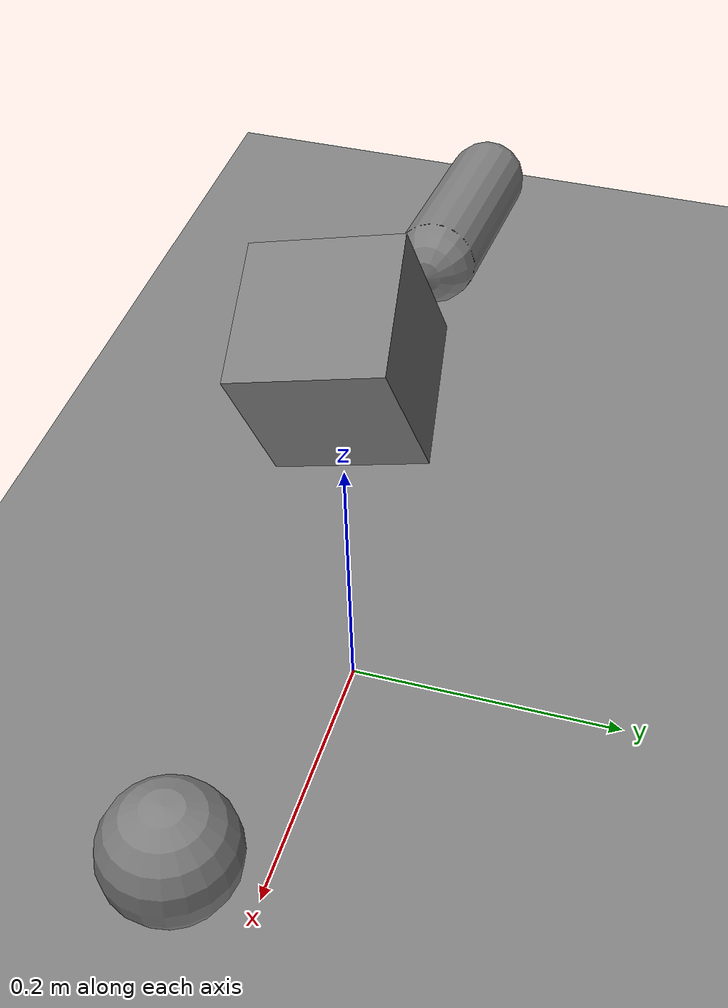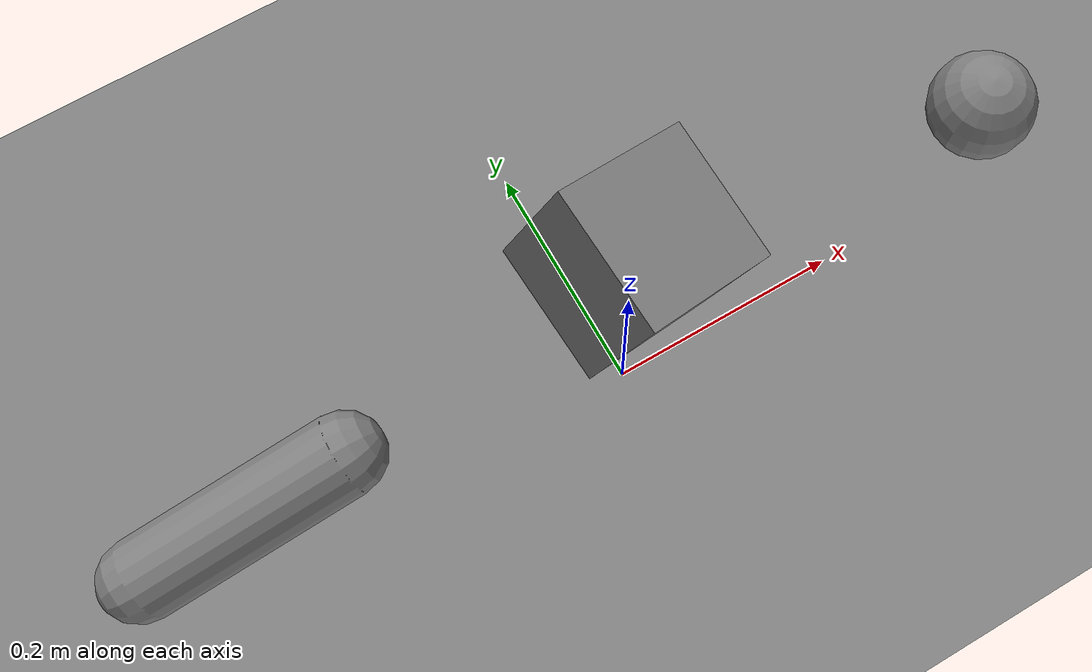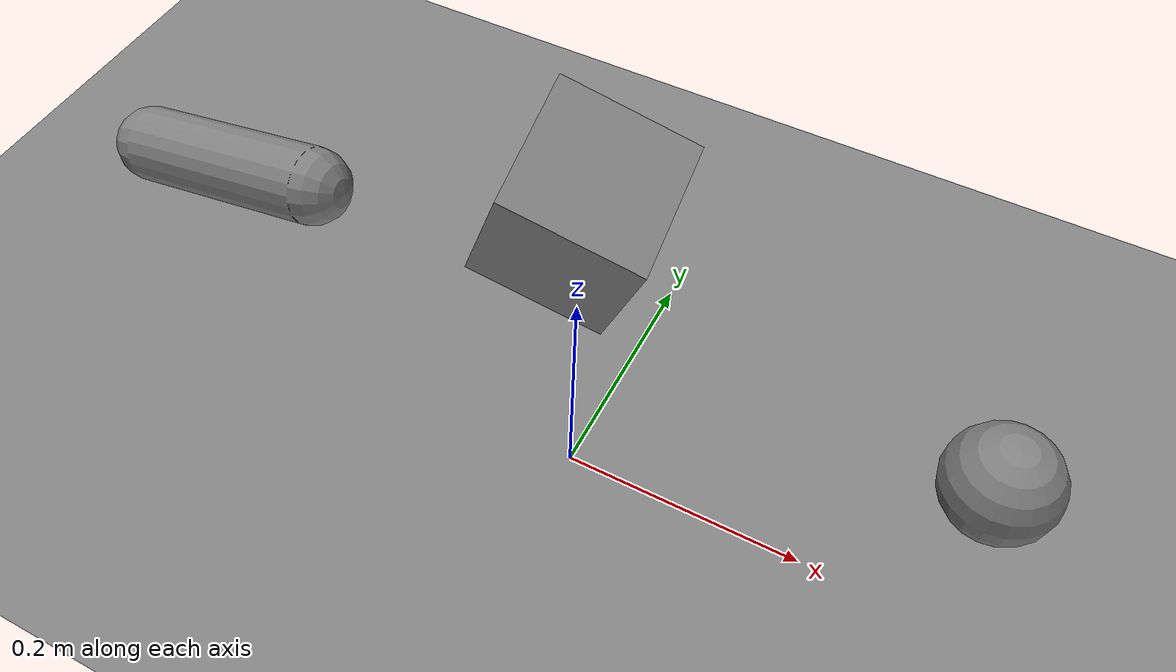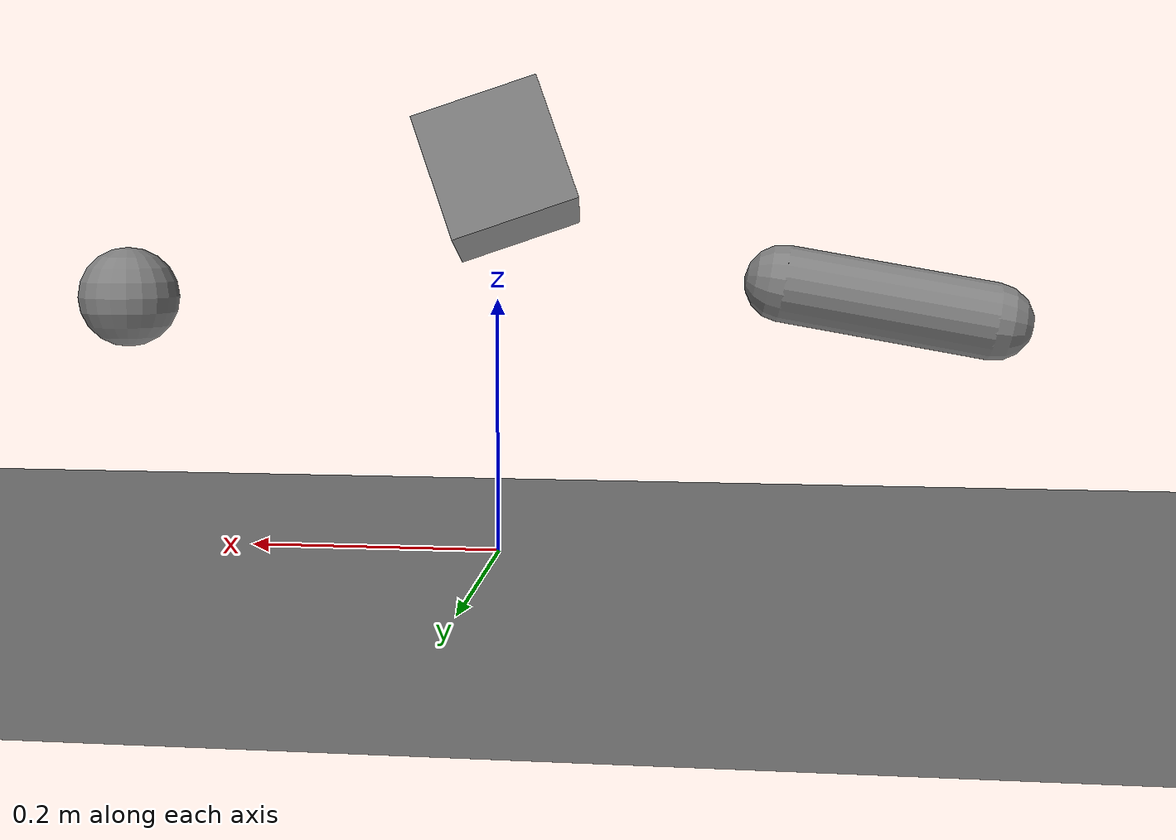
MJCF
<mujoco model="box_drop">
  <option timestep="0.002"/>
  <worldbody>
    <geom type="plane" size="5 5 .1"/>
    <body pos="0 0 0.3" euler="10 20 5"><freejoint/><geom type="box" size=".05 .05 .05"/></body>
    <body pos="0.3 0 0.2"><freejoint/><geom type="sphere" size=".04"/></body>
    <body pos="-0.3 0 0.2" euler="0 80 30"><freejoint/><geom type="capsule" size=".03 .08"/></body>
  </worldbody>
</mujoco>
